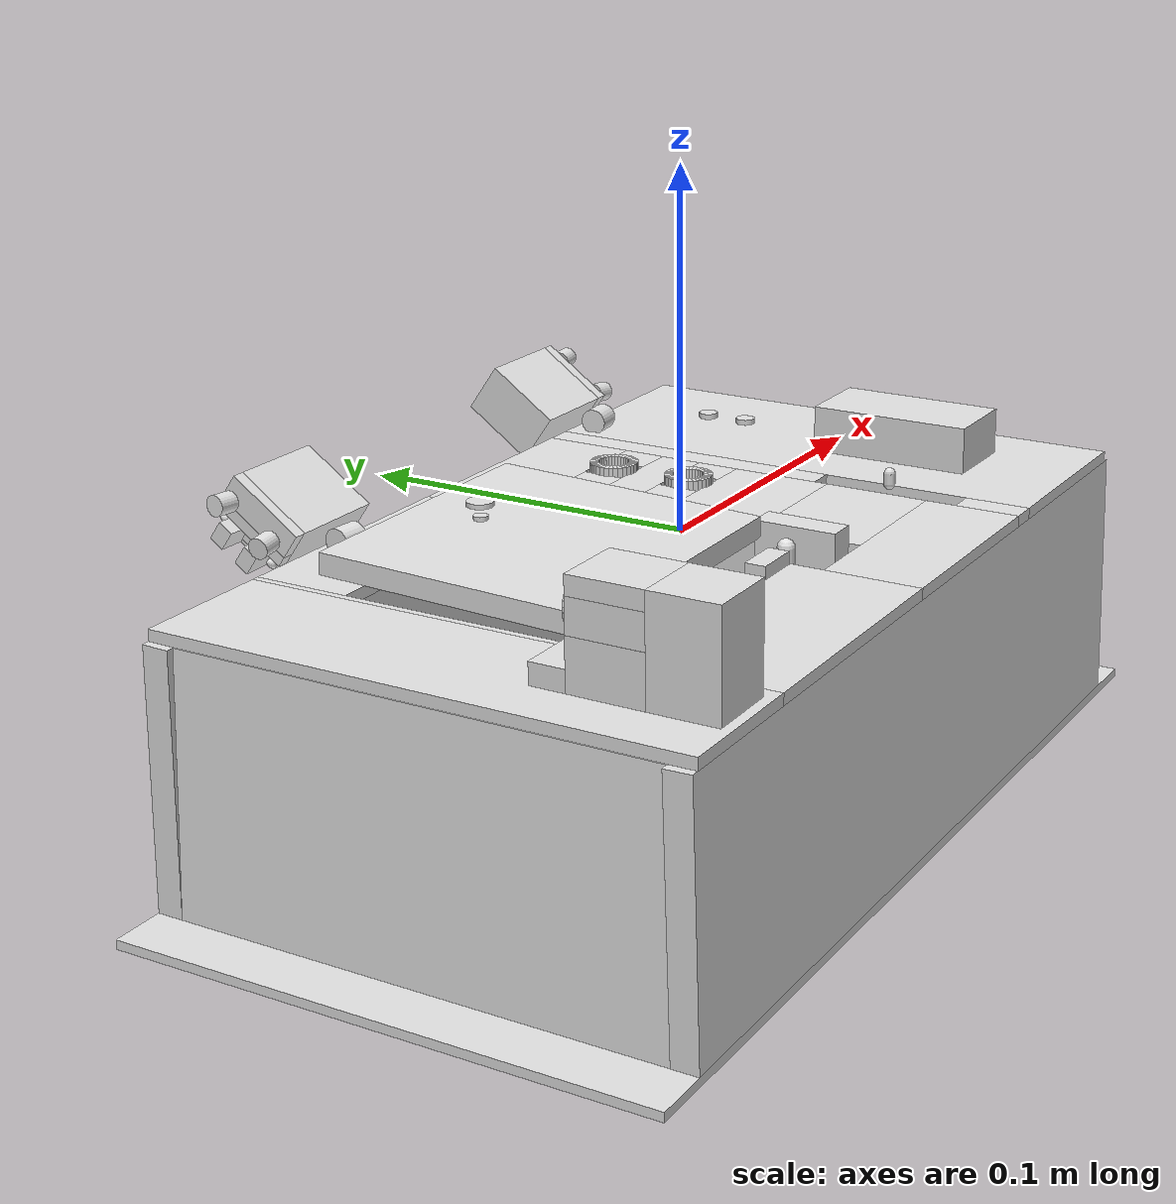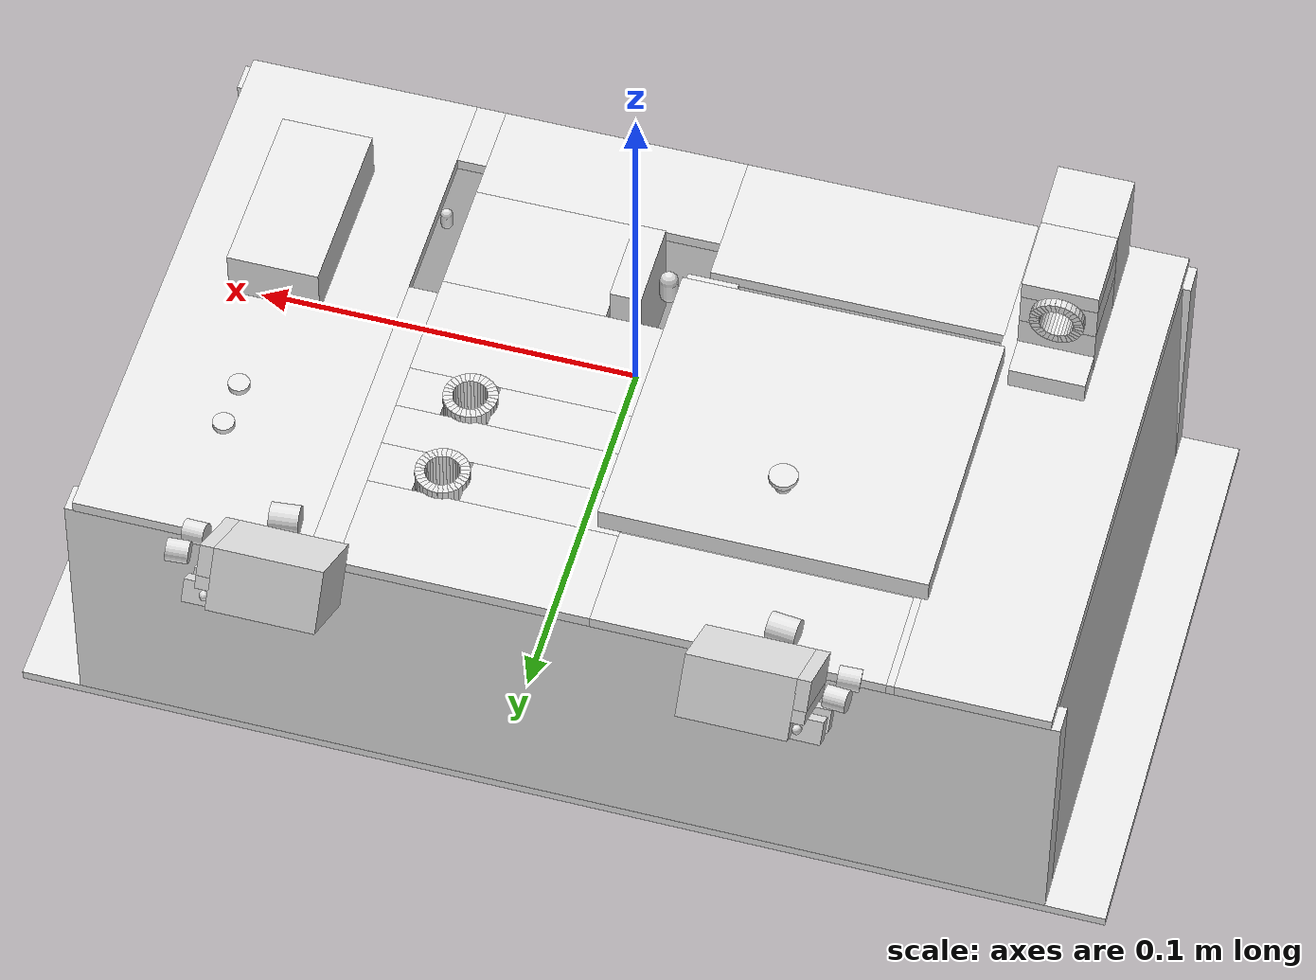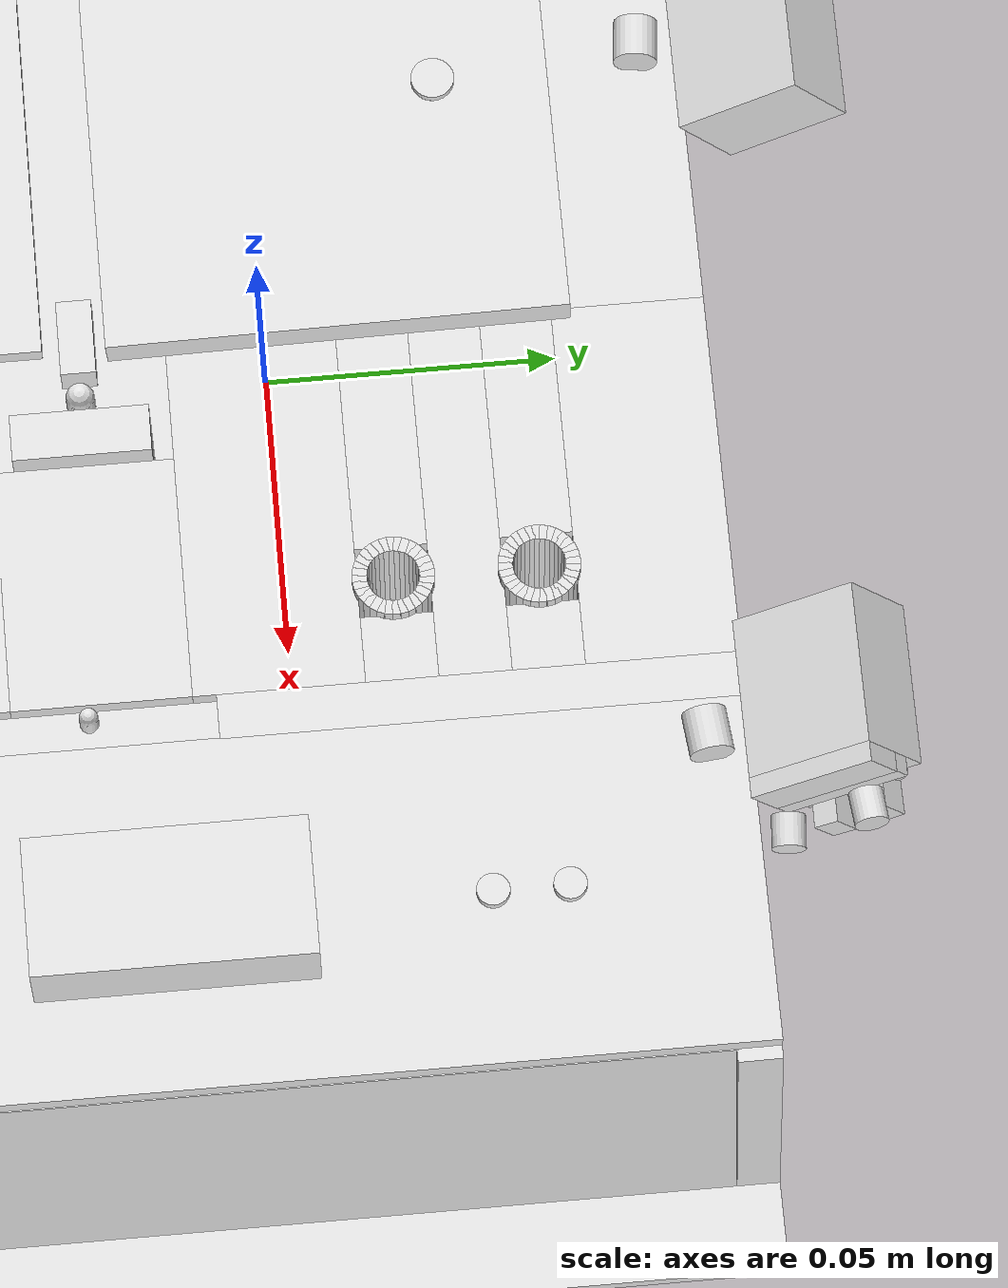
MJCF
<mujoco model="task_board_new">
	<compiler meshdir="task_board/meshes" texturedir="task_board/textures" angle="radian" autolimits="true" balanceinertia="true" boundmass="0.000001" boundinertia="0.000001" />
	<option timestep="0.001" integrator="RK4" gravity="0 0 -9.81" noslip_iterations="5" noslip_tolerance="1e-6">
        <flag energy="enable" contact="enable" />
    </option>
	<default>
		<default class="task_board_visual">
			<geom contype="0" conaffinity="0" />
		</default>
		<default class="task_board_collision">
			<geom rgba="0.9 0.9 0.9 1.0" />
		</default>
	</default>
	<asset>
		</asset>
	<worldbody>
		<body name="task_board" pos="0.0 0.0 0.0" quat="1.0 0.0 0.0 0.0">
			<body name="task_board_main" pos="0.0 0.0 0.0" quat="1.0 0.0 0.0 0.0">
				<inertial mass="7.616941928863525" pos="-0.0011780796339735389 -3.9309339626925066e-05 -0.039935238659381866" quat="0.00119794683996588 0.6997284293174744 0.007045551668852568 0.7143731713294983" diaginertia="0.05582557991147041 0.04489736631512642 0.018900347873568535" />
				<geom name="task_board_main_collision_001" type="box" pos="-0.0006921887979842722 0.0005634986446239054 -0.07817842066287994" quat="0.0 0.7071067690849304 0.0 0.7071067690849304" class="task_board_collision" size="0.0013434328138828278 0.07812581956386566 0.1447429209947586" />
				<geom name="task_board_main_collision_002" type="box" pos="-0.0007403581403195858 -0.07277718186378479 -0.040174443274736404" quat="0.5065849423408508 0.4933449923992157 0.506567120552063 0.49332764744758606" class="task_board_collision" size="0.003799532540142536 0.036879461258649826 0.12891250848770142" />
				<geom name="task_board_main_collision_003" type="box" pos="-0.0007051100837998092 0.07390077412128448 -0.04017476737499237" quat="0.49333223700523376 0.5065765380859375 0.4933401346206665 0.5065757632255554" class="task_board_collision" size="0.0037997078616172075 0.036880508065223694 0.12891915440559387" />
				<geom name="task_board_main_collision_004" type="box" pos="-0.1272374540567398 0.000563445792067796 -0.040238115936517715" quat="0.7070314288139343 0.7070314288139343 0.010323220863938332 -0.010323220863938332" class="task_board_collision" size="0.0013087864499539137 0.036820318549871445 0.07054512202739716" />
				<geom name="task_board_main_collision_005" type="box" pos="0.12583637237548828 0.000556890678126365 -0.04023807868361473" quat="0.7070314288139343 0.7070314288139343 -0.010323233902454376 0.010323233902454376" class="task_board_collision" size="0.0013087878469377756 0.036820318549871445 0.07057908177375793" />
				<geom name="task_board_main_collision_006" type="box" pos="0.09508127719163895 0.0005627145292237401 -0.0016510002315044403" quat="0.49999669194221497 0.5000033378601074 -0.49999669194221497 0.5000033378601074" class="task_board_collision" size="0.0016510002315044403 0.030812952667474747 0.07619984447956085" />
				<geom name="task_board_main_collision_007" type="box" pos="-0.10720948874950409 0.0005629970692098141 -0.0016510002315044403" quat="0.500001072883606 0.49999892711639404 -0.500001072883606 0.49999892711639404" class="task_board_collision" size="0.0016510002315044403 0.020092301070690155 0.07619955390691757" />
				<geom name="task_board_main_collision_008" type="box" pos="-0.08628399670124054 0.025334490463137627 -0.0016510002315044403" quat="0.7071067690849304 0.7071067690849304 0.0 0.0" class="task_board_collision" size="0.000999998301267624 0.0016510002315044403 0.05142848938703537" />
				<geom name="task_board_main_collision_009" type="box" pos="-0.04828399792313576 -0.056859493255615234 -0.0016510002315044403" quat="0.0 0.7071067690849304 0.0 0.7071067690849304" class="task_board_collision" size="0.0016510002315044403 0.018776491284370422 0.039000000804662704" />
				<geom name="task_board_main_collision_010" type="box" pos="0.02357950061559677 -0.06173449009656906 -0.0016510002315044403" quat="0.0 0.7071067690849304 0.0 0.7071067690849304" class="task_board_collision" size="0.0016510002315044403 0.013901492580771446 0.032863497734069824" />
				<geom name="task_board_main_collision_011" type="box" pos="0.06044299528002739 -0.06620799005031586 -0.0016510002315044403" quat="0.5 0.5 -0.5 0.5" class="task_board_collision" size="0.0016510002315044403 0.003999996930360794 0.0094279944896698" />
				<geom name="task_board_main_collision_012" type="box" pos="0.034579500555992126 -0.032332997769117355 -0.0016510002315044403" quat="0.0 0.7071067690849304 0.0 0.7071067690849304" class="task_board_collision" size="0.0016510002315044403 0.01549999974668026 0.021863499656319618" />
				<geom name="task_board_main_collision_013" type="box" pos="0.023579496890306473 -0.002088000299409032 -0.0016510002315044403" quat="0.0 0.7071067690849304 0.0 0.7071067690849304" class="task_board_collision" size="0.0016510002315044403 0.014744999818503857 0.032863497734069824" />
				<geom name="task_board_main_collision_014" type="box" pos="0.06044299900531769 0.031991489231586456 -0.0016510002315044403" quat="0.5 0.5 -0.5 0.5" class="task_board_collision" size="0.0016510002315044403 0.0040000006556510925 0.04477148503065109" />
				<geom name="task_board_main_collision_015" type="box" pos="0.023579496890306473 0.06345998495817184 -0.0016510002315044403" quat="0.0 0.7071067690849304 0.0 0.7071067690849304" class="task_board_collision" size="0.0016510002315044403 0.013302989304065704 0.032863497734069824" />
				<geom name="task_board_main_collision_016" type="box" pos="0.023579496890306473 0.03140699863433838 -0.0016510002315044403" quat="0.0 0.7071067690849304 0.0 0.7071067690849304" class="task_board_collision" size="0.0016510002315044403 0.00624999962747097 0.032863497734069824" />
				<geom name="task_board_main_collision_017" type="box" pos="0.050563499331474304 0.04390700161457062 -0.0016510002315044403" quat="0.5 0.5 -0.5 0.5" class="task_board_collision" size="0.0016510002315044403 0.005879499018192291 0.006250001490116119" />
				<geom name="task_board_main_collision_018" type="box" pos="0.050563499331474304 0.01890699751675129 -0.0016510002315044403" quat="0.5 0.5 -0.5 0.5" class="task_board_collision" size="0.0016510002315044403 0.005879499018192291 0.006249997299164534" />
				<geom name="task_board_main_collision_019" type="box" pos="0.01145949773490429 0.01890699751675129 -0.0016510002315044403" quat="0.0 0.7071067690849304 0.0 0.7071067690849304" class="task_board_collision" size="0.0016510002315044403 0.006249997299164534 0.02074349857866764" />
				<geom name="task_board_main_collision_020" type="box" pos="0.01145949773490429 0.04390700161457062 -0.0016510002315044403" quat="0.0 0.7071067690849304 0.0 0.7071067690849304" class="task_board_collision" size="0.0016510002315044403 0.006250001490116119 0.02074349857866764" />
				<geom name="task_board_main_collision_021" type="box" pos="-0.047283995896577835 0.06283999979496002 -0.0016510002315044403" quat="0.0 0.7071067690849304 0.0 0.7071067690849304" class="task_board_collision" size="0.0016510002315044403 0.013922976329922676 0.03799999877810478" />
				<geom name="task_board_main_collision_022" type="box" pos="0.008515998721122742 -0.03233299404382706 -0.010401993989944458" quat="1.0 0.0 0.0 0.0" class="task_board_collision" size="0.004199996590614319 0.012000003829598427 0.015500009059906006" />
				<geom name="task_board_main_collision_023" type="capsule" pos="0.000116005539894104 -0.03203300014138222 -0.0019019993487745523" quat="1.0 0.0 0.0 0.0" class="task_board_collision" size="0.0024749990552663803 0.0024749990552663803 0.0029969997704029083" />
				<geom name="task_board_main_collision_024" type="box" pos="-0.010883995331823826 -0.03203300014138222 -0.0019019993487745523" quat="0.5 0.5 0.5 0.5" class="task_board_collision" size="0.0030637159943580627 0.003221738850697875 0.006800004281103611" />
			</body>
			<body name="task_board_banana_plug_black" pos="0.03844299912452698 0.04390700161457062 0.0" quat="1.0 0.0 0.0 0.0">
				<inertial mass="0.004504608456045389" pos="1.5940020858806747e-08 -2.135486631971162e-08 -0.009129293262958527" quat="1.0 0.0 0.0 0.0" diaginertia="2.1914435421876988e-07 2.1908198277742486e-07 7.183392369825015e-08" />
				<body name="task_board_banana_plug_black_hole" pos="0.0 0.0 0.0024999999441206455" quat="1.0 0.0 0.0 0.0">
					<inertial mass="0.002106040483340621" pos="0.0 3.896236269071907e-19 -0.011749510653316975" quat="1.0 0.0 0.0 0.0" diaginertia="1.3173702484436944e-07 1.3173702484436944e-07 7.209348495962331e-08" />
					<geom name="task_board_banana_plug_hole_black_collision_001" type="box" pos="0.00579674169421196 -7.939510737742239e-07 -0.011749510653316975" quat="0.7071067690849304 -0.0002342794177820906 -0.0002342794177820906 0.7071067690849304" class="task_board_collision" size="0.0006861235597170889 0.0012675225734710693 0.01170351728796959" />
					<geom name="task_board_banana_plug_hole_black_collision_002" type="box" pos="0.005685513839125633 0.0011301087215542793 -0.011749510653316975" quat="0.6343932747840881 -0.00021018792176619172 -0.0002561146975494921 0.7730103731155396" class="task_board_collision" size="0.0006861235597170889 0.0012675225734710693 0.01170351728796959" />
					<geom name="task_board_banana_plug_hole_black_collision_003" type="box" pos="0.005355795845389366 0.002217580797150731 -0.011749510653316975" quat="0.5555704236030579 -0.00018407223979011178 -0.00027548341313377023 0.8314694166183472" class="task_board_collision" size="0.0006861235597170889 0.0012675225734710693 0.01170351728796959" />
					<geom name="task_board_banana_plug_hole_black_collision_004" type="box" pos="0.004820253234356642 0.0032198410481214523 -0.011749510653316975" quat="0.4713963568210602 -0.00015618358156643808 -0.0002921992272604257 0.8819214105606079" class="task_board_collision" size="0.0006861235597170889 0.0012675225734710693 0.01170351728796959" />
					<geom name="task_board_banana_plug_hole_black_collision_005" type="box" pos="0.004099481739103794 0.004098349250853062 -0.011749510653316975" quat="0.3826839327812195 -0.00012679128849413246 -0.0003061007591895759 0.9238792657852173" class="task_board_collision" size="0.0006861235597170889 0.0012675225734710693 0.01170351728796959" />
					<geom name="task_board_banana_plug_hole_black_collision_006" type="box" pos="0.0032211539801210165 0.004819375928491354 -0.011749510653316975" quat="0.29028430581092834 -9.617733303457499e-05 -0.00031705459696240723 0.9569404125213623" class="task_board_collision" size="0.0006861235597170889 0.0012675225734710693 0.01170351728796959" />
					<geom name="task_board_banana_plug_hole_black_collision_007" type="box" pos="0.0022190548479557037 0.005355185363441706 -0.011749510653316975" quat="0.19509071111679077 -6.46376793156378e-05 -0.00032495486084371805 0.9807851314544678" class="task_board_collision" size="0.0006861235597170889 0.0012675225734710693 0.01170351728796959" />
					<geom name="task_board_banana_plug_hole_black_collision_008" type="box" pos="0.00113166612572968 0.005685204174369574 -0.011749510653316975" quat="0.09801706671714783 -3.247512722737156e-05 -0.0003297257353551686 0.9951846599578857" class="task_board_collision" size="0.0006861235597170889 0.0012675225734710693 0.01170351728796959" />
					<geom name="task_board_banana_plug_hole_black_collision_009" type="box" pos="7.939510737742239e-07 0.00579674169421196 -0.011749510653316975" quat="0.0 0.0 -0.0003313211491331458 0.9999999403953552" class="task_board_collision" size="0.0006861235597170889 0.0012675225734710693 0.01170351728796959" />
					<geom name="task_board_banana_plug_hole_black_collision_010" type="box" pos="-0.0011301087215542793 0.005685513839125633 -0.011749510653316975" quat="-0.09801706671714783 3.247512722737156e-05 -0.0003297257353551686 0.9951846599578857" class="task_board_collision" size="0.0006861235597170889 0.0012675225734710693 0.01170351728796959" />
					<geom name="task_board_banana_plug_hole_black_collision_011" type="box" pos="-0.0022175877820700407 0.005355793051421642 -0.011749510653316975" quat="-0.19509071111679077 6.46376793156378e-05 -0.00032495486084371805 0.9807851314544678" class="task_board_collision" size="0.0006861235597170889 0.0012675225734710693 0.01170351728796959" />
					<geom name="task_board_banana_plug_hole_black_collision_012" type="box" pos="-0.0032198335975408554 0.004820257890969515 -0.011749510653316975" quat="-0.29028430581092834 9.617733303457499e-05 -0.00031705459696240723 0.9569404125213623" class="task_board_collision" size="0.0006861235597170889 0.0012675225734710693 0.01170351728796959" />
					<geom name="task_board_banana_plug_hole_black_collision_013" type="box" pos="-0.004098358564078808 0.004099471960216761 -0.011749510653316975" quat="-0.3826839327812195 0.00012679128849413246 -0.0003061007591895759 0.9238792657852173" class="task_board_collision" size="0.0006861235597170889 0.0012675225734710693 0.01170351728796959" />
					<geom name="task_board_banana_plug_hole_black_collision_014" type="box" pos="-0.004819370806217194 0.0032211611978709698 -0.011749510653316975" quat="-0.4713963568210602 0.00015618358156643808 -0.0002921992272604257 0.8819214105606079" class="task_board_collision" size="0.0006861235597170889 0.0012675225734710693 0.01170351728796959" />
					<geom name="task_board_banana_plug_hole_black_collision_015" type="box" pos="-0.0053551881574094296 0.0022190476302057505 -0.011749510653316975" quat="-0.5555704236030579 0.00018407223979011178 -0.00027548341313377023 0.8314694166183472" class="task_board_collision" size="0.0006861235597170889 0.0012675225734710693 0.01170351728796959" />
					<geom name="task_board_banana_plug_hole_black_collision_016" type="box" pos="-0.005685204174369574 0.00113166612572968 -0.011749510653316975" quat="-0.6343932747840881 0.00021018792176619172 -0.0002561146975494921 0.7730103731155396" class="task_board_collision" size="0.0006861235597170889 0.0012675225734710693 0.01170351728796959" />
					<geom name="task_board_banana_plug_hole_black_collision_017" type="box" pos="-0.00579674169421196 7.939510737742239e-07 -0.011749510653316975" quat="-0.7071067690849304 0.0002342794177820906 -0.0002342794177820906 0.7071067690849304" class="task_board_collision" size="0.0006861235597170889 0.0012675225734710693 0.01170351728796959" />
					<geom name="task_board_banana_plug_hole_black_collision_018" type="box" pos="-0.005685513839125633 -0.0011301087215542793 -0.011749510653316975" quat="-0.7730103731155396 0.0002561146975494921 -0.00021018792176619172 0.6343932747840881" class="task_board_collision" size="0.0006861235597170889 0.0012675225734710693 0.01170351728796959" />
					<geom name="task_board_banana_plug_hole_black_collision_019" type="box" pos="-0.005355795845389366 -0.002217580797150731 -0.011749510653316975" quat="-0.8314694166183472 0.00027548341313377023 -0.00018407223979011178 0.5555704236030579" class="task_board_collision" size="0.0006861235597170889 0.0012675225734710693 0.01170351728796959" />
					<geom name="task_board_banana_plug_hole_black_collision_020" type="box" pos="-0.004820253234356642 -0.0032198410481214523 -0.011749510653316975" quat="-0.8819214105606079 0.0002921992272604257 -0.00015618358156643808 0.4713963568210602" class="task_board_collision" size="0.0006861235597170889 0.0012675225734710693 0.01170351728796959" />
					<geom name="task_board_banana_plug_hole_black_collision_021" type="box" pos="-0.004099481739103794 -0.004098349250853062 -0.011749510653316975" quat="-0.9238792657852173 0.0003061007591895759 -0.00012679128849413246 0.3826839327812195" class="task_board_collision" size="0.0006861235597170889 0.0012675225734710693 0.01170351728796959" />
					<geom name="task_board_banana_plug_hole_black_collision_022" type="box" pos="-0.0032211539801210165 -0.004819375928491354 -0.011749510653316975" quat="-0.9569404125213623 0.00031705459696240723 -9.617733303457499e-05 0.29028430581092834" class="task_board_collision" size="0.0006861235597170889 0.0012675225734710693 0.01170351728796959" />
					<geom name="task_board_banana_plug_hole_black_collision_023" type="box" pos="-0.0022190548479557037 -0.005355185363441706 -0.011749510653316975" quat="-0.9807851314544678 0.00032495486084371805 -6.46376793156378e-05 0.19509071111679077" class="task_board_collision" size="0.0006861235597170889 0.0012675225734710693 0.01170351728796959" />
					<geom name="task_board_banana_plug_hole_black_collision_024" type="box" pos="-0.00113166612572968 -0.005685204174369574 -0.011749510653316975" quat="-0.9951846599578857 0.0003297257353551686 -3.247512722737156e-05 0.09801706671714783" class="task_board_collision" size="0.0006861235597170889 0.0012675225734710693 0.01170351728796959" />
					<geom name="task_board_banana_plug_hole_black_collision_025" type="box" pos="-7.939510737742239e-07 -0.00579674169421196 -0.011749510653316975" quat="-0.9999999403953552 0.0003313211491331458 0.0 0.0" class="task_board_collision" size="0.0006861235597170889 0.0012675225734710693 0.01170351728796959" />
					<geom name="task_board_banana_plug_hole_black_collision_026" type="box" pos="0.0011301087215542793 -0.005685513839125633 -0.011749510653316975" quat="-0.9951846599578857 0.0003297257353551686 3.247512722737156e-05 -0.09801706671714783" class="task_board_collision" size="0.0006861235597170889 0.0012675225734710693 0.01170351728796959" />
					<geom name="task_board_banana_plug_hole_black_collision_027" type="box" pos="0.0022175877820700407 -0.005355793051421642 -0.011749510653316975" quat="-0.9807851314544678 0.00032495486084371805 6.46376793156378e-05 -0.19509071111679077" class="task_board_collision" size="0.0006861235597170889 0.0012675225734710693 0.01170351728796959" />
					<geom name="task_board_banana_plug_hole_black_collision_028" type="box" pos="0.0032198335975408554 -0.004820257890969515 -0.011749510653316975" quat="-0.9569404125213623 0.00031705459696240723 9.617733303457499e-05 -0.29028430581092834" class="task_board_collision" size="0.0006861235597170889 0.0012675225734710693 0.01170351728796959" />
					<geom name="task_board_banana_plug_hole_black_collision_029" type="box" pos="0.004098358564078808 -0.004099471960216761 -0.011749510653316975" quat="-0.9238792657852173 0.0003061007591895759 0.00012679128849413246 -0.3826839327812195" class="task_board_collision" size="0.0006861235597170889 0.0012675225734710693 0.01170351728796959" />
					<geom name="task_board_banana_plug_hole_black_collision_030" type="box" pos="0.004819370806217194 -0.0032211611978709698 -0.011749510653316975" quat="-0.8819214105606079 0.0002921992272604257 0.00015618358156643808 -0.4713963568210602" class="task_board_collision" size="0.0006861235597170889 0.0012675225734710693 0.01170351728796959" />
					<geom name="task_board_banana_plug_hole_black_collision_031" type="box" pos="0.0053551881574094296 -0.0022190476302057505 -0.011749510653316975" quat="-0.8314694166183472 0.00027548341313377023 0.00018407223979011178 -0.5555704236030579" class="task_board_collision" size="0.0006861235597170889 0.0012675225734710693 0.01170351728796959" />
					<geom name="task_board_banana_plug_hole_black_collision_032" type="box" pos="0.005685204174369574 -0.00113166612572968 -0.011749510653316975" quat="-0.7730103731155396 0.0002561146975494921 0.00021018792176619172 -0.6343932747840881" class="task_board_collision" size="0.0006861235597170889 0.0012675225734710693 0.01170351728796959" />
				</body>
			</body>
			<body name="task_board_banana_plug_red" pos="0.03844299912452698 0.01890699937939644 0.0" quat="1.0 0.0 0.0 0.0">
				<inertial mass="0.004504608456045389" pos="1.5940020858806747e-08 -2.135486631971162e-08 -0.009129293262958527" quat="1.0 0.0 0.0 0.0" diaginertia="2.1914435421876988e-07 2.1908198277742486e-07 7.183392369825015e-08" />
				<body name="task_board_banana_plug_red_hole" pos="0.0 0.0 0.0024999999441206455" quat="1.0 0.0 0.0 0.0">
					<inertial mass="0.002106040483340621" pos="0.0 3.896236269071907e-19 -0.011749510653316975" quat="1.0 0.0 0.0 0.0" diaginertia="1.3173702484436944e-07 1.3173702484436944e-07 7.209348495962331e-08" />
					<geom name="task_board_banana_plug_hole_red_collision_001" type="box" pos="0.00579674169421196 -7.939510737742239e-07 -0.011749510653316975" quat="0.7071067690849304 -0.0002342794177820906 -0.0002342794177820906 0.7071067690849304" class="task_board_collision" size="0.0006861235597170889 0.0012675225734710693 0.01170351728796959" />
					<geom name="task_board_banana_plug_hole_red_collision_002" type="box" pos="0.005685513839125633 0.0011301087215542793 -0.011749510653316975" quat="0.6343932747840881 -0.00021018792176619172 -0.0002561146975494921 0.7730103731155396" class="task_board_collision" size="0.0006861235597170889 0.0012675225734710693 0.01170351728796959" />
					<geom name="task_board_banana_plug_hole_red_collision_003" type="box" pos="0.005355795845389366 0.002217580797150731 -0.011749510653316975" quat="0.5555704236030579 -0.00018407223979011178 -0.00027548341313377023 0.8314694166183472" class="task_board_collision" size="0.0006861235597170889 0.0012675225734710693 0.01170351728796959" />
					<geom name="task_board_banana_plug_hole_red_collision_004" type="box" pos="0.004820253234356642 0.0032198410481214523 -0.011749510653316975" quat="0.4713963568210602 -0.00015618358156643808 -0.0002921992272604257 0.8819214105606079" class="task_board_collision" size="0.0006861235597170889 0.0012675225734710693 0.01170351728796959" />
					<geom name="task_board_banana_plug_hole_red_collision_005" type="box" pos="0.004099481739103794 0.004098349250853062 -0.011749510653316975" quat="0.3826839327812195 -0.00012679128849413246 -0.0003061007591895759 0.9238792657852173" class="task_board_collision" size="0.0006861235597170889 0.0012675225734710693 0.01170351728796959" />
					<geom name="task_board_banana_plug_hole_red_collision_006" type="box" pos="0.0032211539801210165 0.004819375928491354 -0.011749510653316975" quat="0.29028430581092834 -9.617733303457499e-05 -0.00031705459696240723 0.9569404125213623" class="task_board_collision" size="0.0006861235597170889 0.0012675225734710693 0.01170351728796959" />
					<geom name="task_board_banana_plug_hole_red_collision_007" type="box" pos="0.0022190548479557037 0.005355185363441706 -0.011749510653316975" quat="0.19509071111679077 -6.46376793156378e-05 -0.00032495486084371805 0.9807851314544678" class="task_board_collision" size="0.0006861235597170889 0.0012675225734710693 0.01170351728796959" />
					<geom name="task_board_banana_plug_hole_red_collision_008" type="box" pos="0.00113166612572968 0.005685204174369574 -0.011749510653316975" quat="0.09801706671714783 -3.247512722737156e-05 -0.0003297257353551686 0.9951846599578857" class="task_board_collision" size="0.0006861235597170889 0.0012675225734710693 0.01170351728796959" />
					<geom name="task_board_banana_plug_hole_red_collision_009" type="box" pos="7.939510737742239e-07 0.00579674169421196 -0.011749510653316975" quat="0.0 0.0 -0.0003313211491331458 0.9999999403953552" class="task_board_collision" size="0.0006861235597170889 0.0012675225734710693 0.01170351728796959" />
					<geom name="task_board_banana_plug_hole_red_collision_010" type="box" pos="-0.0011301087215542793 0.005685513839125633 -0.011749510653316975" quat="-0.09801706671714783 3.247512722737156e-05 -0.0003297257353551686 0.9951846599578857" class="task_board_collision" size="0.0006861235597170889 0.0012675225734710693 0.01170351728796959" />
					<geom name="task_board_banana_plug_hole_red_collision_011" type="box" pos="-0.0022175877820700407 0.005355793051421642 -0.011749510653316975" quat="-0.19509071111679077 6.46376793156378e-05 -0.00032495486084371805 0.9807851314544678" class="task_board_collision" size="0.0006861235597170889 0.0012675225734710693 0.01170351728796959" />
					<geom name="task_board_banana_plug_hole_red_collision_012" type="box" pos="-0.0032198335975408554 0.004820257890969515 -0.011749510653316975" quat="-0.29028430581092834 9.617733303457499e-05 -0.00031705459696240723 0.9569404125213623" class="task_board_collision" size="0.0006861235597170889 0.0012675225734710693 0.01170351728796959" />
					<geom name="task_board_banana_plug_hole_red_collision_013" type="box" pos="-0.004098358564078808 0.004099471960216761 -0.011749510653316975" quat="-0.3826839327812195 0.00012679128849413246 -0.0003061007591895759 0.9238792657852173" class="task_board_collision" size="0.0006861235597170889 0.0012675225734710693 0.01170351728796959" />
					<geom name="task_board_banana_plug_hole_red_collision_014" type="box" pos="-0.004819370806217194 0.0032211611978709698 -0.011749510653316975" quat="-0.4713963568210602 0.00015618358156643808 -0.0002921992272604257 0.8819214105606079" class="task_board_collision" size="0.0006861235597170889 0.0012675225734710693 0.01170351728796959" />
					<geom name="task_board_banana_plug_hole_red_collision_015" type="box" pos="-0.0053551881574094296 0.0022190476302057505 -0.011749510653316975" quat="-0.5555704236030579 0.00018407223979011178 -0.00027548341313377023 0.8314694166183472" class="task_board_collision" size="0.0006861235597170889 0.0012675225734710693 0.01170351728796959" />
					<geom name="task_board_banana_plug_hole_red_collision_016" type="box" pos="-0.005685204174369574 0.00113166612572968 -0.011749510653316975" quat="-0.6343932747840881 0.00021018792176619172 -0.0002561146975494921 0.7730103731155396" class="task_board_collision" size="0.0006861235597170889 0.0012675225734710693 0.01170351728796959" />
					<geom name="task_board_banana_plug_hole_red_collision_017" type="box" pos="-0.00579674169421196 7.939510737742239e-07 -0.011749510653316975" quat="-0.7071067690849304 0.0002342794177820906 -0.0002342794177820906 0.7071067690849304" class="task_board_collision" size="0.0006861235597170889 0.0012675225734710693 0.01170351728796959" />
					<geom name="task_board_banana_plug_hole_red_collision_018" type="box" pos="-0.005685513839125633 -0.0011301087215542793 -0.011749510653316975" quat="-0.7730103731155396 0.0002561146975494921 -0.00021018792176619172 0.6343932747840881" class="task_board_collision" size="0.0006861235597170889 0.0012675225734710693 0.01170351728796959" />
					<geom name="task_board_banana_plug_hole_red_collision_019" type="box" pos="-0.005355795845389366 -0.002217580797150731 -0.011749510653316975" quat="-0.8314694166183472 0.00027548341313377023 -0.00018407223979011178 0.5555704236030579" class="task_board_collision" size="0.0006861235597170889 0.0012675225734710693 0.01170351728796959" />
					<geom name="task_board_banana_plug_hole_red_collision_020" type="box" pos="-0.004820253234356642 -0.0032198410481214523 -0.011749510653316975" quat="-0.8819214105606079 0.0002921992272604257 -0.00015618358156643808 0.4713963568210602" class="task_board_collision" size="0.0006861235597170889 0.0012675225734710693 0.01170351728796959" />
					<geom name="task_board_banana_plug_hole_red_collision_021" type="box" pos="-0.004099481739103794 -0.004098349250853062 -0.011749510653316975" quat="-0.9238792657852173 0.0003061007591895759 -0.00012679128849413246 0.3826839327812195" class="task_board_collision" size="0.0006861235597170889 0.0012675225734710693 0.01170351728796959" />
					<geom name="task_board_banana_plug_hole_red_collision_022" type="box" pos="-0.0032211539801210165 -0.004819375928491354 -0.011749510653316975" quat="-0.9569404125213623 0.00031705459696240723 -9.617733303457499e-05 0.29028430581092834" class="task_board_collision" size="0.0006861235597170889 0.0012675225734710693 0.01170351728796959" />
					<geom name="task_board_banana_plug_hole_red_collision_023" type="box" pos="-0.0022190548479557037 -0.005355185363441706 -0.011749510653316975" quat="-0.9807851314544678 0.00032495486084371805 -6.46376793156378e-05 0.19509071111679077" class="task_board_collision" size="0.0006861235597170889 0.0012675225734710693 0.01170351728796959" />
					<geom name="task_board_banana_plug_hole_red_collision_024" type="box" pos="-0.00113166612572968 -0.005685204174369574 -0.011749510653316975" quat="-0.9951846599578857 0.0003297257353551686 -3.247512722737156e-05 0.09801706671714783" class="task_board_collision" size="0.0006861235597170889 0.0012675225734710693 0.01170351728796959" />
					<geom name="task_board_banana_plug_hole_red_collision_025" type="box" pos="-7.939510737742239e-07 -0.00579674169421196 -0.011749510653316975" quat="-0.9999999403953552 0.0003313211491331458 0.0 0.0" class="task_board_collision" size="0.0006861235597170889 0.0012675225734710693 0.01170351728796959" />
					<geom name="task_board_banana_plug_hole_red_collision_026" type="box" pos="0.0011301087215542793 -0.005685513839125633 -0.011749510653316975" quat="-0.9951846599578857 0.0003297257353551686 3.247512722737156e-05 -0.09801706671714783" class="task_board_collision" size="0.0006861235597170889 0.0012675225734710693 0.01170351728796959" />
					<geom name="task_board_banana_plug_hole_red_collision_027" type="box" pos="0.0022175877820700407 -0.005355793051421642 -0.011749510653316975" quat="-0.9807851314544678 0.00032495486084371805 6.46376793156378e-05 -0.19509071111679077" class="task_board_collision" size="0.0006861235597170889 0.0012675225734710693 0.01170351728796959" />
					<geom name="task_board_banana_plug_hole_red_collision_028" type="box" pos="0.0032198335975408554 -0.004820257890969515 -0.011749510653316975" quat="-0.9569404125213623 0.00031705459696240723 9.617733303457499e-05 -0.29028430581092834" class="task_board_collision" size="0.0006861235597170889 0.0012675225734710693 0.01170351728796959" />
					<geom name="task_board_banana_plug_hole_red_collision_029" type="box" pos="0.004098358564078808 -0.004099471960216761 -0.011749510653316975" quat="-0.9238792657852173 0.0003061007591895759 0.00012679128849413246 -0.3826839327812195" class="task_board_collision" size="0.0006861235597170889 0.0012675225734710693 0.01170351728796959" />
					<geom name="task_board_banana_plug_hole_red_collision_030" type="box" pos="0.004819370806217194 -0.0032211611978709698 -0.011749510653316975" quat="-0.8819214105606079 0.0002921992272604257 0.00015618358156643808 -0.4713963568210602" class="task_board_collision" size="0.0006861235597170889 0.0012675225734710693 0.01170351728796959" />
					<geom name="task_board_banana_plug_hole_red_collision_031" type="box" pos="0.0053551881574094296 -0.0022190476302057505 -0.011749510653316975" quat="-0.8314694166183472 0.00027548341313377023 0.00018407223979011178 -0.5555704236030579" class="task_board_collision" size="0.0006861235597170889 0.0012675225734710693 0.01170351728796959" />
					<geom name="task_board_banana_plug_hole_red_collision_032" type="box" pos="0.005685204174369574 -0.00113166612572968 -0.011749510653316975" quat="-0.7730103731155396 0.0002561146975494921 0.00021018792176619172 -0.6343932747840881" class="task_board_collision" size="0.0006861235597170889 0.0012675225734710693 0.01170351728796959" />
				</body>
			</body>
			<body name="task_board_slider" pos="0.06044299900531769 -0.034529998898506165 0.0033650000113993883" quat="1.0 0.0 0.0 0.0">
				<inertial mass="0.000809999939519912" pos="-1.862645149230957e-09 3.725290298461914e-09 -9.876557305688038e-05" quat="1.0 0.0 0.0 0.0" diaginertia="7.363766041379449e-09 5.631264343719522e-09 5.10750020055184e-09" />
				<geom name="task_board_slider_collision_001" type="capsule" pos="-1.862645149230957e-09 3.725290298461914e-09 -9.876557305688038e-05" quat="1.0 0.0 0.0 0.0" class="task_board_collision" size="0.0016250000335276127 0.0016250000335276127 0.001999999862164259" />
				<joint name="task_board_slider_joint" type="slide" pos="0.0 0.0 0.0" range="-0.017999999225139618 0.017999999225139618" axis="0.0 1.0 0.0" />
			</body>
			<body name="task_board_cable_wrap_post_left" pos="0.08894900232553482 0.0934389978647232 0.0016400000313296914" quat="1.0 0.0 0.0 0.0">
				<inertial mass="0.043695658445358276" pos="-0.01696014031767845 -0.008828177116811275 0.004354794975370169" quat="-0.332691490650177 0.6096816062927246 0.18388494849205017 0.6955508589744568" diaginertia="1.0074165402329527e-05 6.1012633523205295e-06 5.7250399549957365e-06" />
				<geom name="task_board_cable_wrap_post_left_collision_001" type="box" pos="-0.008449503220617771 0.0014341690111905336 -0.002047385321930051" quat="0.32650548219680786 0.6272114515304565 -0.6272114515304565 0.32650548219680786" class="task_board_collision" size="0.0005001231329515576 0.0012000068090856075 0.007000075653195381" />
				<geom name="task_board_cable_wrap_post_left_collision_002" type="box" pos="-0.021347269415855408 -0.0035570135805755854 0.00508040701970458" quat="-0.21267928183078766 0.6745470762252808 -0.212580144405365 0.674213171005249" class="task_board_collision" size="0.008206946775317192 0.012000166811048985 0.014219795353710651" />
				<geom name="task_board_cable_wrap_post_left_collision_003" type="box" pos="-0.0034706543665379286 -0.0039007910527288914 -0.002731037326157093" quat="0.3287789225578308 0.6315895915031433 0.3242071568965912 0.6228071451187134" class="task_board_collision" size="0.002298588864505291 0.003000047989189625 0.0038311337120831013" />
				<geom name="task_board_cable_wrap_post_left_collision_004" type="box" pos="-0.0034706543665379286 0.0039008655585348606 0.0027317244093865156" quat="0.3242071866989136 0.6228071451187134 0.3287789523601532 0.6315895318984985" class="task_board_collision" size="0.0022985883988440037 0.003000047989189625 0.0038311337120831013" />
				<geom name="task_board_cable_wrap_post_left_collision_005" type="box" pos="-0.005535418633371592 -0.0026895920746028423 0.0038415875751525164" quat="0.3265049159526825 0.6272116899490356 -0.6272116899490356 0.3265049159526825" class="task_board_collision" size="0.0017006172565743327 0.0017909843008965254 0.011999995447695255" />
				<geom name="task_board_cable_wrap_post_left_collision_006" type="box" pos="-0.005454731173813343 -0.005963878706097603 0.008517701178789139" quat="0.4617477059364319 0.8870111107826233 0.0005305179511196911 -0.0002761695359367877" class="task_board_collision" size="0.001798597862944007 0.004007237497717142 0.01200004294514656" />
				<geom name="task_board_cable_wrap_post_left_collision_007" type="cylinder" pos="-0.017090627923607826 -0.02398036979138851 0.0014848459977656603" quat="-0.014357449486851692 0.7057669758796692 0.0567244291305542 0.7060234546661377" class="task_board_collision" size="0.0038312352262437344 0.0038312352262437344 0.02266767993569374" />
				<geom name="task_board_cable_wrap_post_left_collision_008" type="cylinder" pos="0.0025730389170348644 0.000693732697982341 0.012904477305710316" quat="0.5700677037239075 0.3709033727645874 0.5829318761825562 0.44457167387008667" class="task_board_collision" size="0.0029062607791274786 0.0029062607791274786 0.007339681498706341" />
				<geom name="task_board_cable_wrap_post_left_collision_009" type="cylinder" pos="0.0025902511551976204 -0.012366867624223232 0.0037552472203969955" quat="0.02577909082174301 0.7339403033256531 -0.029010552912950516 0.6781043410301208" class="task_board_collision" size="0.0029104145942255855 0.0029104145942255855 0.007356579881161451" />
				<geom name="task_board_cable_wrap_post_left_collision_010" type="ellipsoid" pos="-0.005658560898154974 -0.007768507115542889 -0.004834845196455717" quat="0.9343777298927307 0.2950756847858429 0.06397289037704468 -0.1891457736492157" class="task_board_collision" size="0.0010783805046230555 0.001503445440903306 0.0012554998975247145" />
				<geom name="task_board_cable_wrap_post_left_collision_011" type="ellipsoid" pos="-0.005658538546413183 0.007201085798442364 0.005645879544317722" quat="0.9343771934509277 0.29507705569267273 -0.06399280577898026 0.1891395002603531" class="task_board_collision" size="0.0010784345213323832 0.0015034524258226156 0.0012558615999296308" />
			</body>
			<body name="task_board_button_blue" pos="0.0962430015206337 0.04390700161457062 0.0020230000372976065" quat="1.0 0.0 0.0 0.0">
				<inertial mass="0.0006532502011395991" pos="0.0 0.0 0.0" quat="0.5 0.5 -0.5 0.5" diaginertia="1.0612049905489584e-08 5.863464824784614e-09 5.863464824784614e-09" />
				<geom name="task_board_button_blue_collision_001" type="cylinder" pos="0.0 0.0 0.0" quat="1.0 0.0 0.0 0.0" size="0.002850000048056245 0.0007999999797903001 0.0" class="task_board_collision" />
				<joint name="task_board_button_blue_joint" type="slide" pos="0.0 0.0 0.0" range="-0.003000000026077032 0.0" axis="0.0 0.0 1.0" />
			</body>
			<body name="task_board_banana_pug_port" pos="-0.10184399783611298 -0.04301600158214569 0.01899999938905239" quat="1.0 0.0 0.0 0.0">
				<inertial mass="0.06875700503587723" pos="1.5504801922361366e-06 -0.0065566315315663815 -0.004786085803061724" quat="0.7728709578514099 0.6345632076263428 -0.00019669417815748602 7.945717516122386e-05" diaginertia="1.5920872101560235e-05 1.379157583869528e-05 6.211651907506166e-06" />
				<geom name="task_board_banana_pug_port_collision_001" type="box" pos="-3.481654005099699e-07 -0.0002169477374991402 0.007374912034720182" quat="0.4998639225959778 0.5001360177993774 -0.49984678626060486 0.5001531839370728" class="task_board_collision" size="0.0026254483964294195 0.010006093420088291 0.010455714538693428" />
				<geom name="task_board_banana_pug_port_collision_002" type="box" pos="1.1272406936768675e-06 -0.00021109520457684994 -0.011875005438923836" quat="0.5009582042694092 0.4990571141242981 -0.5009226202964783 0.4990585148334503" class="task_board_collision" size="0.007125707343220711 0.010039572604000568 0.010495837777853012" />
				<geom name="task_board_banana_pug_port_collision_003" type="box" pos="1.2350664064797456e-06 -0.020219087600708008 -0.004499996080994606" quat="0.705710232257843 9.685199984232895e-07 -2.4485847461619414e-05 0.7085005640983582" class="task_board_collision" size="0.009581911377608776 0.01003793254494667 0.014500739052891731" />
				<geom name="task_board_banana_pug_port_collision_004" type="box" pos="2.3646666704735253e-06 0.01523718610405922 -0.016000041738152504" quat="-0.00016573113680351526 0.7071067690849304 0.00016573113680351526 0.7071067690849304" class="task_board_collision" size="0.003000066615641117 0.004993828944861889 0.010002190247178078" />
				<geom name="task_board_banana_pug_port_collision_005" type="box" pos="-0.00737508712336421 -0.00021851823839824647 9.517543730908073e-08" quat="0.7071067690849304 0.7071067690849304 2.236500586150214e-05 2.236500586150214e-05" class="task_board_collision" size="0.002625667955726385 0.004750005900859833 0.010450170375406742" />
				<geom name="task_board_banana_pug_port_collision_006" type="box" pos="0.007375190034508705 -0.00021406081214081496 -8.389366144001542e-07" quat="0.707215428352356 0.7069981098175049 -1.924160824273713e-05 -1.9235694708186202e-05" class="task_board_collision" size="0.0026256144046783447 0.00475320965051651 0.010457776486873627" />
				<body name="task_board_banana_pug_hole" pos="0.0 0.012734999880194664 0.0" quat="0.7071067690849304 -0.7071067690849304 0.0 0.0">
					<inertial mass="0.002106040483340621" pos="0.0 3.896236269071907e-19 -0.011749510653316975" quat="1.0 0.0 0.0 0.0" diaginertia="1.3173702484436944e-07 1.3173702484436944e-07 7.209348495962331e-08" />
					<geom name="task_board_banana_pug_hole_collision_001" type="box" pos="0.00579674169421196 -7.939510737742239e-07 -0.011749510653316975" quat="0.7071067690849304 -0.0002342794177820906 -0.0002342794177820906 0.7071067690849304" class="task_board_collision" size="0.0006861235597170889 0.0012675225734710693 0.01170351728796959" />
					<geom name="task_board_banana_pug_hole_collision_002" type="box" pos="0.005685513839125633 0.0011301087215542793 -0.011749510653316975" quat="0.6343932747840881 -0.00021018792176619172 -0.0002561146975494921 0.7730103731155396" class="task_board_collision" size="0.0006861235597170889 0.0012675225734710693 0.01170351728796959" />
					<geom name="task_board_banana_pug_hole_collision_003" type="box" pos="0.005355795845389366 0.002217580797150731 -0.011749510653316975" quat="0.5555704236030579 -0.00018407223979011178 -0.00027548341313377023 0.8314694166183472" class="task_board_collision" size="0.0006861235597170889 0.0012675225734710693 0.01170351728796959" />
					<geom name="task_board_banana_pug_hole_collision_004" type="box" pos="0.004820253234356642 0.0032198410481214523 -0.011749510653316975" quat="0.4713963568210602 -0.00015618358156643808 -0.0002921992272604257 0.8819214105606079" class="task_board_collision" size="0.0006861235597170889 0.0012675225734710693 0.01170351728796959" />
					<geom name="task_board_banana_pug_hole_collision_005" type="box" pos="0.004099481739103794 0.004098349250853062 -0.011749510653316975" quat="0.3826839327812195 -0.00012679128849413246 -0.0003061007591895759 0.9238792657852173" class="task_board_collision" size="0.0006861235597170889 0.0012675225734710693 0.01170351728796959" />
					<geom name="task_board_banana_pug_hole_collision_006" type="box" pos="0.0032211539801210165 0.004819375928491354 -0.011749510653316975" quat="0.29028430581092834 -9.617733303457499e-05 -0.00031705459696240723 0.9569404125213623" class="task_board_collision" size="0.0006861235597170889 0.0012675225734710693 0.01170351728796959" />
					<geom name="task_board_banana_pug_hole_collision_007" type="box" pos="0.0022190548479557037 0.005355185363441706 -0.011749510653316975" quat="0.19509071111679077 -6.46376793156378e-05 -0.00032495486084371805 0.9807851314544678" class="task_board_collision" size="0.0006861235597170889 0.0012675225734710693 0.01170351728796959" />
					<geom name="task_board_banana_pug_hole_collision_008" type="box" pos="0.00113166612572968 0.005685204174369574 -0.011749510653316975" quat="0.09801706671714783 -3.247512722737156e-05 -0.0003297257353551686 0.9951846599578857" class="task_board_collision" size="0.0006861235597170889 0.0012675225734710693 0.01170351728796959" />
					<geom name="task_board_banana_pug_hole_collision_009" type="box" pos="7.939510737742239e-07 0.00579674169421196 -0.011749510653316975" quat="0.0 0.0 -0.0003313211491331458 0.9999999403953552" class="task_board_collision" size="0.0006861235597170889 0.0012675225734710693 0.01170351728796959" />
					<geom name="task_board_banana_pug_hole_collision_010" type="box" pos="-0.0011301087215542793 0.005685513839125633 -0.011749510653316975" quat="-0.09801706671714783 3.247512722737156e-05 -0.0003297257353551686 0.9951846599578857" class="task_board_collision" size="0.0006861235597170889 0.0012675225734710693 0.01170351728796959" />
					<geom name="task_board_banana_pug_hole_collision_011" type="box" pos="-0.0022175877820700407 0.005355793051421642 -0.011749510653316975" quat="-0.19509071111679077 6.46376793156378e-05 -0.00032495486084371805 0.9807851314544678" class="task_board_collision" size="0.0006861235597170889 0.0012675225734710693 0.01170351728796959" />
					<geom name="task_board_banana_pug_hole_collision_012" type="box" pos="-0.0032198335975408554 0.004820257890969515 -0.011749510653316975" quat="-0.29028430581092834 9.617733303457499e-05 -0.00031705459696240723 0.9569404125213623" class="task_board_collision" size="0.0006861235597170889 0.0012675225734710693 0.01170351728796959" />
					<geom name="task_board_banana_pug_hole_collision_013" type="box" pos="-0.004098358564078808 0.004099471960216761 -0.011749510653316975" quat="-0.3826839327812195 0.00012679128849413246 -0.0003061007591895759 0.9238792657852173" class="task_board_collision" size="0.0006861235597170889 0.0012675225734710693 0.01170351728796959" />
					<geom name="task_board_banana_pug_hole_collision_014" type="box" pos="-0.004819370806217194 0.0032211611978709698 -0.011749510653316975" quat="-0.4713963568210602 0.00015618358156643808 -0.0002921992272604257 0.8819214105606079" class="task_board_collision" size="0.0006861235597170889 0.0012675225734710693 0.01170351728796959" />
					<geom name="task_board_banana_pug_hole_collision_015" type="box" pos="-0.0053551881574094296 0.0022190476302057505 -0.011749510653316975" quat="-0.5555704236030579 0.00018407223979011178 -0.00027548341313377023 0.8314694166183472" class="task_board_collision" size="0.0006861235597170889 0.0012675225734710693 0.01170351728796959" />
					<geom name="task_board_banana_pug_hole_collision_016" type="box" pos="-0.005685204174369574 0.00113166612572968 -0.011749510653316975" quat="-0.6343932747840881 0.00021018792176619172 -0.0002561146975494921 0.7730103731155396" class="task_board_collision" size="0.0006861235597170889 0.0012675225734710693 0.01170351728796959" />
					<geom name="task_board_banana_pug_hole_collision_017" type="box" pos="-0.00579674169421196 7.939510737742239e-07 -0.011749510653316975" quat="-0.7071067690849304 0.0002342794177820906 -0.0002342794177820906 0.7071067690849304" class="task_board_collision" size="0.0006861235597170889 0.0012675225734710693 0.01170351728796959" />
					<geom name="task_board_banana_pug_hole_collision_018" type="box" pos="-0.005685513839125633 -0.0011301087215542793 -0.011749510653316975" quat="-0.7730103731155396 0.0002561146975494921 -0.00021018792176619172 0.6343932747840881" class="task_board_collision" size="0.0006861235597170889 0.0012675225734710693 0.01170351728796959" />
					<geom name="task_board_banana_pug_hole_collision_019" type="box" pos="-0.005355795845389366 -0.002217580797150731 -0.011749510653316975" quat="-0.8314694166183472 0.00027548341313377023 -0.00018407223979011178 0.5555704236030579" class="task_board_collision" size="0.0006861235597170889 0.0012675225734710693 0.01170351728796959" />
					<geom name="task_board_banana_pug_hole_collision_020" type="box" pos="-0.004820253234356642 -0.0032198410481214523 -0.011749510653316975" quat="-0.8819214105606079 0.0002921992272604257 -0.00015618358156643808 0.4713963568210602" class="task_board_collision" size="0.0006861235597170889 0.0012675225734710693 0.01170351728796959" />
					<geom name="task_board_banana_pug_hole_collision_021" type="box" pos="-0.004099481739103794 -0.004098349250853062 -0.011749510653316975" quat="-0.9238792657852173 0.0003061007591895759 -0.00012679128849413246 0.3826839327812195" class="task_board_collision" size="0.0006861235597170889 0.0012675225734710693 0.01170351728796959" />
					<geom name="task_board_banana_pug_hole_collision_022" type="box" pos="-0.0032211539801210165 -0.004819375928491354 -0.011749510653316975" quat="-0.9569404125213623 0.00031705459696240723 -9.617733303457499e-05 0.29028430581092834" class="task_board_collision" size="0.0006861235597170889 0.0012675225734710693 0.01170351728796959" />
					<geom name="task_board_banana_pug_hole_collision_023" type="box" pos="-0.0022190548479557037 -0.005355185363441706 -0.011749510653316975" quat="-0.9807851314544678 0.00032495486084371805 -6.46376793156378e-05 0.19509071111679077" class="task_board_collision" size="0.0006861235597170889 0.0012675225734710693 0.01170351728796959" />
					<geom name="task_board_banana_pug_hole_collision_024" type="box" pos="-0.00113166612572968 -0.005685204174369574 -0.011749510653316975" quat="-0.9951846599578857 0.0003297257353551686 -3.247512722737156e-05 0.09801706671714783" class="task_board_collision" size="0.0006861235597170889 0.0012675225734710693 0.01170351728796959" />
					<geom name="task_board_banana_pug_hole_collision_025" type="box" pos="-7.939510737742239e-07 -0.00579674169421196 -0.011749510653316975" quat="-0.9999999403953552 0.0003313211491331458 0.0 0.0" class="task_board_collision" size="0.0006861235597170889 0.0012675225734710693 0.01170351728796959" />
					<geom name="task_board_banana_pug_hole_collision_026" type="box" pos="0.0011301087215542793 -0.005685513839125633 -0.011749510653316975" quat="-0.9951846599578857 0.0003297257353551686 3.247512722737156e-05 -0.09801706671714783" class="task_board_collision" size="0.0006861235597170889 0.0012675225734710693 0.01170351728796959" />
					<geom name="task_board_banana_pug_hole_collision_027" type="box" pos="0.0022175877820700407 -0.005355793051421642 -0.011749510653316975" quat="-0.9807851314544678 0.00032495486084371805 6.46376793156378e-05 -0.19509071111679077" class="task_board_collision" size="0.0006861235597170889 0.0012675225734710693 0.01170351728796959" />
					<geom name="task_board_banana_pug_hole_collision_028" type="box" pos="0.0032198335975408554 -0.004820257890969515 -0.011749510653316975" quat="-0.9569404125213623 0.00031705459696240723 9.617733303457499e-05 -0.29028430581092834" class="task_board_collision" size="0.0006861235597170889 0.0012675225734710693 0.01170351728796959" />
					<geom name="task_board_banana_pug_hole_collision_029" type="box" pos="0.004098358564078808 -0.004099471960216761 -0.011749510653316975" quat="-0.9238792657852173 0.0003061007591895759 0.00012679128849413246 -0.3826839327812195" class="task_board_collision" size="0.0006861235597170889 0.0012675225734710693 0.01170351728796959" />
					<geom name="task_board_banana_pug_hole_collision_030" type="box" pos="0.004819370806217194 -0.0032211611978709698 -0.011749510653316975" quat="-0.8819214105606079 0.0002921992272604257 0.00015618358156643808 -0.4713963568210602" class="task_board_collision" size="0.0006861235597170889 0.0012675225734710693 0.01170351728796959" />
					<geom name="task_board_banana_pug_hole_collision_031" type="box" pos="0.0053551881574094296 -0.0022190476302057505 -0.011749510653316975" quat="-0.8314694166183472 0.00027548341313377023 0.00018407223979011178 -0.5555704236030579" class="task_board_collision" size="0.0006861235597170889 0.0012675225734710693 0.01170351728796959" />
					<geom name="task_board_banana_pug_hole_collision_032" type="box" pos="0.005685204174369574 -0.00113166612572968 -0.011749510653316975" quat="-0.7730103731155396 0.0002561146975494921 0.00021018792176619172 -0.6343932747840881" class="task_board_collision" size="0.0006861235597170889 0.0012675225734710693 0.01170351728796959" />
				</body>
			</body>
			<body name="task_board_m5_stick_c" pos="0.0962430015206337 -0.023080000653862953 0.006850000005215406" quat="1.0 0.0 0.0 0.0">
				<inertial mass="0.04181278124451637" pos="-1.1457431355665904e-05 2.9143269784981385e-05 0.00017303161439485848" quat="0.5059045553207397 0.4941261410713196 -0.4967001676559448 0.5031787753105164" diaginertia="9.508899893262424e-06 8.191432243620511e-06 2.4424950879620155e-06" />
				<geom name="task_board_m5_stick_c_collision_001" type="box" pos="0.0 -1.3969838619232178e-09 0.0" quat="0.5 0.5 -0.5 0.5" class="task_board_collision" size="0.006849989295005798 0.012199824675917625 0.02409997023642063" />
			</body>
			<body name="task_board_cable_wrap_post_right" pos="-0.0743279978632927 0.0934389978647232 0.0016400000313296914" quat="1.0 0.0 0.0 0.0">
				<inertial mass="0.043695658445358276" pos="0.01696014031767845 -0.008828177116811275 0.004354794975370169" quat="0.18388494849205017 0.6955508589744568 -0.332691490650177 0.6096816062927246" diaginertia="1.0074165402329527e-05 6.1012633523205295e-06 5.7250399549957365e-06" />
				<geom name="task_board_cable_wrap_post_right_collision_001" type="box" pos="0.008449503220617771 0.0014341690111905336 -0.002047385321930051" quat="0.32650548219680786 0.6272113919258118 -0.6272113919258118 0.32650548219680786" class="task_board_collision" size="0.0005001231329515576 0.0012000068090856075 0.007000075653195381" />
				<geom name="task_board_cable_wrap_post_right_collision_002" type="box" pos="0.021347269415855408 -0.0035570135805755854 0.00508040701970458" quat="-0.21258015930652618 0.674213171005249 -0.21267925202846527 0.6745470762252808" class="task_board_collision" size="0.008206946775317192 0.01200016774237156 0.014219796285033226" />
				<geom name="task_board_cable_wrap_post_right_collision_003" type="box" pos="0.0034706543665379286 -0.0039007910527288914 -0.002731037326157093" quat="0.3242071866989136 0.6228071451187134 0.3287789523601532 0.6315895915031433" class="task_board_collision" size="0.0022985886316746473 0.003000047989189625 0.0038311337120831013" />
				<geom name="task_board_cable_wrap_post_right_collision_004" type="box" pos="0.0034706543665379286 0.0039008655585348606 0.0027317244093865156" quat="0.3287789523601532 0.6315895915031433 0.3242071866989136 0.6228071451187134" class="task_board_collision" size="0.002298588864505291 0.003000047989189625 0.0038311337120831013" />
				<geom name="task_board_cable_wrap_post_right_collision_005" type="box" pos="0.005535418633371592 -0.0026895920746028423 0.0038415875751525164" quat="0.3265049159526825 0.6272116899490356 -0.6272116899490356 0.3265049159526825" class="task_board_collision" size="0.0017006171401590109 0.0017909843008965254 0.011999995447695255" />
				<geom name="task_board_cable_wrap_post_right_collision_006" type="box" pos="0.005454731173813343 -0.0059638782404363155 0.008517701178789139" quat="0.4617477357387543 0.8870111107826233 -0.0005305287195369601 0.0002761751529760659" class="task_board_collision" size="0.001798597862944007 0.004007237963378429 0.01200004294514656" />
				<geom name="task_board_cable_wrap_post_right_collision_007" type="cylinder" pos="0.017090626060962677 -0.02398036979138851 0.0014848459977656603" quat="0.0567244216799736 0.7060234546661377 -0.014357442036271095 0.705767035484314" class="task_board_collision" size="0.0038312351680360734 0.0038312351680360734 0.02266767993569374" />
				<geom name="task_board_cable_wrap_post_right_collision_008" type="cylinder" pos="-0.0025730389170348644 0.0006937326397746801 0.012904477305710316" quat="0.5829318761825562 0.44457167387008667 0.5700677037239075 0.3709033727645874" class="task_board_collision" size="0.0029062607791274786 0.0029062607791274786 0.007339681498706341" />
				<geom name="task_board_cable_wrap_post_right_collision_009" type="cylinder" pos="-0.0025902511551976204 -0.012366867624223232 0.0037552472203969955" quat="-0.029010551050305367 0.6781043410301208 0.025779081508517265 0.7339403033256531" class="task_board_collision" size="0.0029104145942255855 0.0029104145942255855 0.007356579881161451" />
				<geom name="task_board_cable_wrap_post_right_collision_010" type="ellipsoid" pos="0.005658560898154974 -0.007768507115542889 -0.004834845196455717" quat="0.9343776702880859 0.2950757145881653 -0.06397289037704468 0.1891457885503769" class="task_board_collision" size="0.0010783805046230555 0.0015034453244879842 0.0012554998975247145" />
				<geom name="task_board_cable_wrap_post_right_collision_011" type="ellipsoid" pos="0.005658538546413183 0.007201086264103651 0.005645879544317722" quat="0.9343772530555725 0.295076847076416 0.06399282813072205 -0.1891395002603531" class="task_board_collision" size="0.0010784345213323832 0.001503452891483903 0.001255861367098987" />
			</body>
			<body name="task_board_lid" pos="-0.047283999621868134 -0.032333001494407654 -0.0008019999950192869" quat="1.0 0.0 0.0 0.0">
				<inertial mass="0.1086004376411438" pos="2.5788585844566114e-06 0.037636153399944305 0.007401283830404282" quat="0.4782772362232208 0.5208163857460022 -0.5208590030670166 0.47823333740234375" diaginertia="0.00012705853441730142 6.734210182912648e-05 6.124936044216156e-05" />
				<geom name="task_board_lid_collision_001" type="box" pos="-4.421470691795548e-07 0.045503273606300354 0.008874790742993355" quat="-0.010651832446455956 0.7070265412330627 -0.010651832446455956 0.7070265412330627" class="task_board_collision" size="0.0030000023543834686 0.03999999910593033 0.04250001534819603" />
				<joint name="task_board_lid_joint" type="hinge" pos="0.0 0.0 0.0" range="0.0 2.072930097579956" axis="1.0 0.0 0.0" />
				<body name="task_board_lid_knob" pos="-0.0 0.06539800018072128 0.012198000214993954" quat="1.0 0.0 0.0 0.0">
					<inertial mass="0.0028435129206627607" pos="-3.4078295811923454e-06 -6.770335403416539e-06 0.0006270412122830749" quat="0.9999810457229614 0.006148172076791525 -0.00022422129404731095 -1.378577167088224e-06" diaginertia="8.164399645238518e-08 8.163605258459938e-08 4.3162213358982626e-08" />
					<geom name="task_board_lid_knob_collision_001" type="cylinder" pos="0.0 0.0 -0.0025500000920146704" quat="1.0 0.0 0.0 0.0" size="0.0020000000949949026 0.003967000171542168 0.0" class="task_board_collision" />
					<geom name="task_board_lid_knob_collision_002" type="cylinder" pos="0.0 0.0 0.004763999953866005" quat="1.0 0.0 0.0 0.0" size="0.0037430000957101583 0.0006750000175088644 0.0" class="task_board_collision" />
				</body>
			</body>
			<body name="task_board_button_red" pos="0.0962430015206337 0.030906999483704567 0.0020230000372976065" quat="1.0 0.0 0.0 0.0">
				<inertial mass="0.0006532502011395991" pos="0.0 0.0 0.0" quat="0.5 0.5 -0.5 0.5" diaginertia="1.0612049905489584e-08 5.863464824784614e-09 5.863464824784614e-09" />
				<geom name="task_board_button_red_collision_001" type="cylinder" pos="0.0 0.0 0.0" quat="1.0 0.0 0.0 0.0" size="0.002850000048056245 0.0007999999797903001 0.0" class="task_board_collision" />
				<joint name="task_board_button_red_joint" type="slide" pos="0.0 0.0 0.0" range="-0.003000000026077032 0.0" axis="0.0 0.0 1.0" />
			</body>
		</body>
	</worldbody>

	<asset>
        </asset>

    <default>
		<default class="task_board_probe_visual">
			<geom contype="0" conaffinity="0" />
		</default>
		<default class="task_board_probe_collision">
			<geom rgba="0.9 0.9 0.9 1.0" group="3" />
		</default>
	</default>

    <worldbody>
        <body name="task_board_probe" pos="-0.101844 -0.007 0.019">
            <freejoint />
            <inertial mass="0.006231526378542185" pos="-2.27348695425178e-11 0.0001277880510315299 -3.0341962276025924e-09" quat="-0.4846147894859314 -0.5149257183074951 0.5149257183074951 0.4846147894859314" diaginertia="6.648315320489928e-08 5.043107648816658e-06 5.043107648816658e-06" />
            <geom name="task_board_probe_collision_001" type="cylinder" friction="0.5" solimp="0.95 0.95 0.005" solref="0.03 1" condim="6" class="task_board_probe_collision" size="0.002279294072650373 0.002279294072650373 0.0020130001939833164" />
            <geom name="task_board_probe_collision_002" type="ellipsoid" friction="0.5" solimp="0.95 0.95 0.005" solref="0.03 1" condim="6" class="task_board_probe_collision" size="0.0024862498976290226 0.0037462143227458 0.0024862498976290226" />
            <geom name="task_board_probe_collision_003" type="cylinder" friction="0.5" solimp="0.95 0.95 0.005" solref="0.03 1" condim="6" class="task_board_probe_collision" size="0.0021916567347943783 0.0021916567347943783 0.007454513572156429" />
            <geom name="task_board_probe_collision_004" type="ellipsoid" friction="0.5" solimp="0.95 0.95 0.005" solref="0.03 1" condim="6" class="task_board_probe_collision" size="0.0025538760237395763 0.020997729152441025 0.0025538760237395763" />
            <geom type="sphere" pos="0 -0.056582 0" size="0.00099" friction="0.5" solimp="0.95 0.95 0.005" solref="0.03 1" condim="6" class="task_board_probe_collision" />
        </body>
    </worldbody>
	<equality />
</mujoco>
